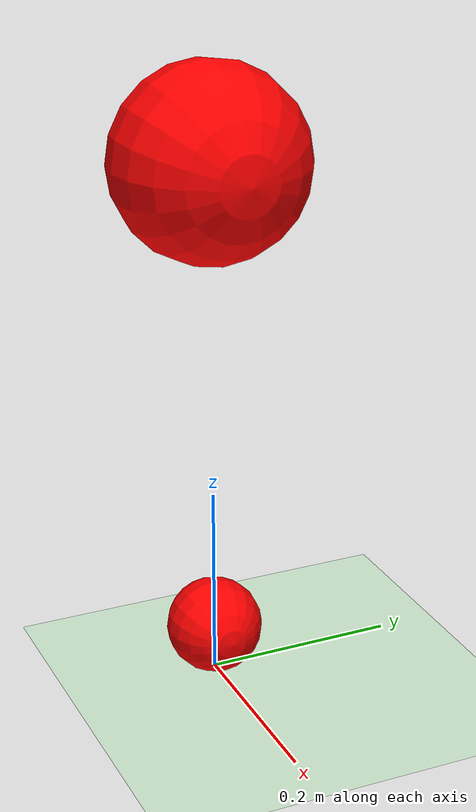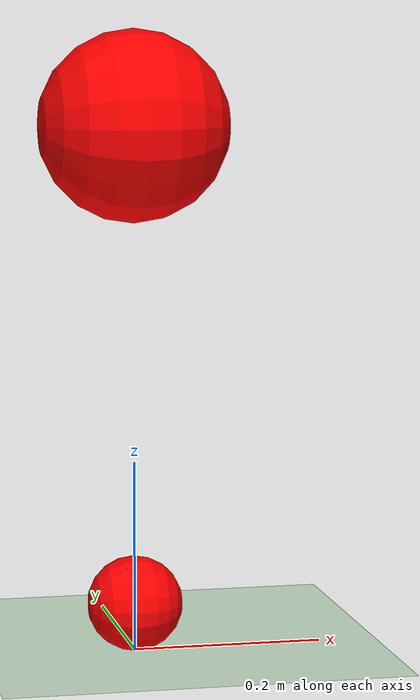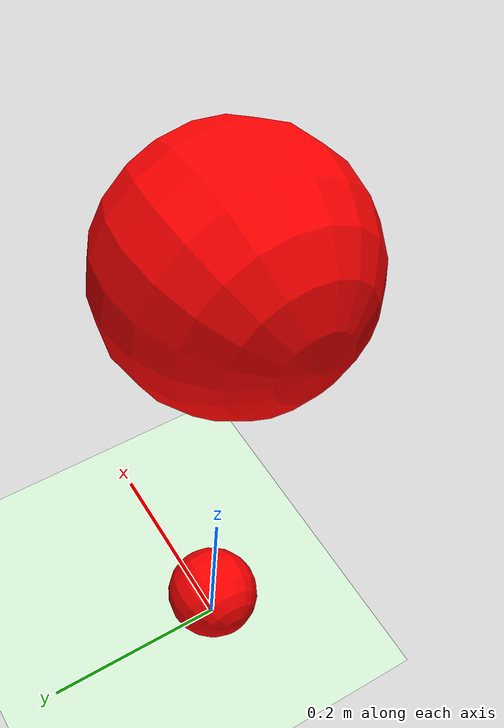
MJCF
<mujoco model="hopper">
  <compiler angle="degree" coordinate="global" inertiafromgeom="true"/>
  <default>
    <joint armature="1" damping="1" limited="false"/>
    <geom conaffinity="1" condim="1" contype="1" margin="0.001" material="geom" rgba="1.0 0.0 0.0 1"/>
    <motor ctrllimited="false" ctrlrange="-100.0 100.0"/>
  </default>

  <option integrator="RK4" timestep="0.01"/>

	<size nkey='5'/>
  <visual>
    <map znear="0.02"/>
  </visual>
  <worldbody>
    <light cutoff="100" diffuse="1 1 1" dir="-0 0 -1.3" directional="true" exponent="1" pos="0 0 1.3" specular=".1 .1 .1"/>
    <geom conaffinity="1" condim="3" name="floor" pos="0 0 0" rgba="0.8 0.9 0.8 1" size="20 20 .125" type="plane" material="MatPlane"/>
    <body name="torso" pos="0 0 0.55">
      <camera name="track" mode="trackcom" pos="0 -3 1" xyaxes="1 0 0 0 0 1"/>
      <joint armature="0" axis="1 0 0" damping="0" limited="false" name="rootx" pos="0 0 0" stiffness="0" type="slide"/>
      <joint armature="0" axis="0 1 0" damping="0" limited="false" name="rooty" pos="0 0 0" stiffness="0" type="slide"/>
      <joint armature="0" axis="0 0 1" damping="0" limited="false" name="rootz" pos="0 0 0" ref="0.55" stiffness="0" type="slide"/>

      <joint armature="0" axis="1 0 0" damping="0" limited="false" name="rotx" pos="0 0 0.55" stiffness="0" type="hinge"/>
      <joint armature="0" axis="0 1 0" damping="0" limited="false" name="roty" pos="0 0 0.55" stiffness="0" type="hinge"/>
      <joint armature="0" axis="0 0 1" damping="0" limited="false" name="rotz" pos="0 0 0.55" stiffness="0" type="hinge"/>

      <geom friction="0.5" fromto="-0.1 0 0.55 0.1 0 0.55" name="torso_geom" size="0.1 0.1 0.1" type="ellipsoid"/>
      <body name="foot" pos="0 0 0.05">
        <joint axis="0 0 -1" name="foot_slider" pos="0 0 0.55" range="0.25 1.0" ref="0.5" type="slide"/>
        <geom friction="0.5" fromto="-0.05 0 0.05 0.05 0 0.05" name="thigh_geom" size="0.05 0.05 0.05" type="ellipsoid"/>
      </body>
    </body>
  </worldbody>
  <actuator>
    <motor ctrllimited="false" gear="200.0" joint="rotx"/>
    <motor ctrllimited="false" gear="200.0" joint="roty"/>
    <motor ctrllimited="false" gear="200.0" joint="foot_slider"/>
    <motor ctrllimited="false" gear="200.0" joint="rootx"/>
    <motor ctrllimited="false" gear="200.0" joint="rooty"/>
    <motor ctrllimited="false" gear="200.0" joint="rootz"/>
    <motor ctrllimited="false" gear="200.0" joint="rotz"/>
  </actuator>
    <asset>
        <texture type="skybox" builtin="gradient" rgb1=".4 .5 .6" rgb2="0 0 0"
            width="100" height="100"/>
        <texture builtin="flat" height="1278" mark="cross" markrgb="1 1 1" name="texgeom" random="0.01" rgb1="0.8 0.6 0.4" rgb2="0.8 0.6 0.4" type="cube" width="127"/>
        <texture builtin="checker" height="100" name="texplane" rgb1="0 0 0" rgb2="0.8 0.8 0.8" type="2d" width="100"/>
        <material name="MatPlane" reflectance="0.5" shininess="1" specular="1" texrepeat="60 60" texture="texplane"/>
        <material name="geom" texture="texgeom" texuniform="true"/>
    </asset>
</mujoco>
